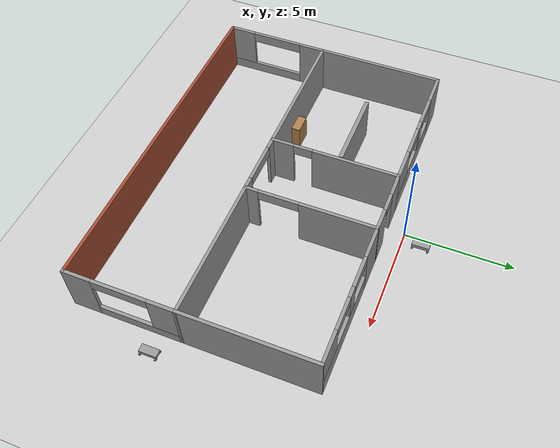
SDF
<sdf version="1.6">
 <world name="default">
  <plugin name="script" filename="libscript.so"/>
  <light name="sun" type="directional">
   <pose>0 0 10 0 -0 0</pose>
   <diffuse>0.8 0.8 0.8 1</diffuse>
   <specular>0.2 0.2 0.2 1</specular>
   <attenuation>
    <range>1000</range>
    <constant>0.9</constant>
    <linear>0.01</linear>
    <quadratic>0.001</quadratic>
   </attenuation>
   <direction>-0.5 0.1 -0.9</direction>
  </light>
  <model name="ground_plane">
   <static>1</static>
   <link name="link">
    <collision name="collision">
     <geometry><plane><normal>0 0 1</normal><size>100 100</size></plane></geometry>
     <surface>
      <contact><collide_bitmask>65535</collide_bitmask></contact>
      <friction><ode><mu>100</mu><mu2>50</mu2></ode></friction>
     </surface>
    </collision>
    <visual name="visual">
     <cast_shadows>0</cast_shadows>
     <geometry><plane><normal>0 0 1</normal><size>100 100</size></plane></geometry>
     <material>
      <script><uri>file://media/materials/scripts/gazebo.material</uri><name>Gazebo/Grey</name></script>
     </material>
    </visual>
   </link>
  </model>
  <gravity>0 0 -9.8</gravity>
  <magnetic_field>6e-06 2.3e-05 -4.2e-05</magnetic_field>
  <atmosphere type="adiabatic"/>
  <physics name="default_physics" default="0" type="ode">
   <max_step_size>0.001</max_step_size>
   <real_time_factor>1</real_time_factor>
   <real_time_update_rate>1000</real_time_update_rate>
  </physics>
  <scene><ambient>0.4 0.4 0.4 1</ambient><background>0.7 0.7 0.7 1</background><shadows>1</shadows></scene>
  <spherical_coordinates>
   <surface_model>EARTH_WGS84</surface_model>
   <latitude_deg>0</latitude_deg>
   <longitude_deg>0</longitude_deg>
   <elevation>0</elevation>
   <heading_deg>0</heading_deg>
  </spherical_coordinates>
  <model name="Tank">
   <link name="link_0">
    <pose>0.126817 -0.036012 0.417499 -1.57079 0 1.5708</pose>
    <inertial>
     <mass>1</mass>
     <inertia><ixx>0.145833</ixx><ixy>0</ixy><ixz>0</ixz><iyy>0.145833</iyy><iyz>0</iyz><izz>0.125</izz></inertia>
    </inertial>
    <visual name="visual">
     <geometry><cylinder><radius>0.05</radius><length>0.1</length></cylinder></geometry>
     <material>
      <lighting>1</lighting>
      <script><uri>file://media/materials/scripts/gazebo.material</uri><name>Gazebo/Grey</name></script>
      <shader type="pixel"><normal_map>__default__</normal_map></shader>
      <ambient>0.3 0.3 0.3 1</ambient>
      <diffuse>0.7 0.7 0.7 1</diffuse>
      <specular>0.01 0.01 0.01 1</specular>
      <emissive>0 0 0 1</emissive>
     </material>
    </visual>
    <collision name="collision">
     <geometry><cylinder><radius>0.05</radius><length>0.1</length></cylinder></geometry>
     <surface>
      <friction>
       <ode><mu>1</mu><mu2>1</mu2><fdir1>0 0 0</fdir1><slip1>0</slip1><slip2>0</slip2></ode>
       <torsional>
        <coefficient>1</coefficient>
        <patch_radius>0</patch_radius>
        <surface_radius>0</surface_radius>
        <use_patch_radius>1</use_patch_radius>
        <ode><slip>0</slip></ode>
       </torsional>
      </friction>
      <bounce><restitution_coefficient>0</restitution_coefficient><threshold>1e+06</threshold></bounce>
      <contact>
       <collide_without_contact>0</collide_without_contact>
       <collide_without_contact_bitmask>1</collide_without_contact_bitmask>
       <collide_bitmask>1</collide_bitmask>
       <ode>
        <soft_cfm>0</soft_cfm>
        <soft_erp>0.2</soft_erp>
        <kp>1e+13</kp>
        <kd>1</kd>
        <max_vel>0.01</max_vel>
        <min_depth>0</min_depth>
       </ode>
       <bullet>
        <split_impulse>1</split_impulse>
        <split_impulse_penetration_threshold>-0.01</split_impulse_penetration_threshold>
        <soft_cfm>0</soft_cfm>
        <soft_erp>0.2</soft_erp>
        <kp>1e+13</kp>
        <kd>1</kd>
       </bullet>
      </contact>
     </surface>
    </collision>
   </link>
   <link name="link_0_clone">
    <pose>0.126817 0.663987 0.4175 -1.57079 0 1.5708</pose>
    <inertial>
     <mass>1</mass>
     <inertia><ixx>0.145833</ixx><ixy>0</ixy><ixz>0</ixz><iyy>0.145833</iyy><iyz>0</iyz><izz>0.125</izz></inertia>
    </inertial>
    <visual name="visual">
     <geometry><cylinder><radius>0.05</radius><length>0.1</length></cylinder></geometry>
     <material>
      <lighting>1</lighting>
      <script><uri>file://media/materials/scripts/gazebo.material</uri><name>Gazebo/Grey</name></script>
      <shader type="pixel"><normal_map>__default__</normal_map></shader>
      <ambient>0.3 0.3 0.3 1</ambient>
      <diffuse>0.7 0.7 0.7 1</diffuse>
      <specular>0.01 0.01 0.01 1</specular>
      <emissive>0 0 0 1</emissive>
     </material>
    </visual>
    <collision name="collision">
     <geometry><cylinder><radius>0.05</radius><length>0.1</length></cylinder></geometry>
     <surface>
      <friction>
       <ode><mu>1</mu><mu2>1</mu2><fdir1>0 0 0</fdir1><slip1>0</slip1><slip2>0</slip2></ode>
       <torsional>
        <coefficient>1</coefficient>
        <patch_radius>0</patch_radius>
        <surface_radius>0</surface_radius>
        <use_patch_radius>1</use_patch_radius>
        <ode><slip>0</slip></ode>
       </torsional>
      </friction>
      <bounce><restitution_coefficient>0</restitution_coefficient><threshold>1e+06</threshold></bounce>
      <contact>
       <collide_without_contact>0</collide_without_contact>
       <collide_without_contact_bitmask>1</collide_without_contact_bitmask>
       <collide_bitmask>1</collide_bitmask>
       <ode>
        <soft_cfm>0</soft_cfm>
        <soft_erp>0.2</soft_erp>
        <kp>1e+13</kp>
        <kd>1</kd>
        <max_vel>0.01</max_vel>
        <min_depth>0</min_depth>
       </ode>
       <bullet>
        <split_impulse>1</split_impulse>
        <split_impulse_penetration_threshold>-0.01</split_impulse_penetration_threshold>
        <soft_cfm>0</soft_cfm>
        <soft_erp>0.2</soft_erp>
        <kp>1e+13</kp>
        <kd>1</kd>
       </bullet>
      </contact>
     </surface>
    </collision>
   </link>
   <link name="link_0_clone_0">
    <pose>0.476817 -0.036013 0.4175 -1.57079 0 1.5708</pose>
    <inertial>
     <mass>1</mass>
     <inertia><ixx>0.145833</ixx><ixy>0</ixy><ixz>0</ixz><iyy>0.145833</iyy><iyz>0</iyz><izz>0.125</izz></inertia>
    </inertial>
    <visual name="visual">
     <geometry><cylinder><radius>0.05</radius><length>0.1</length></cylinder></geometry>
     <material>
      <lighting>1</lighting>
      <script><uri>file://media/materials/scripts/gazebo.material</uri><name>Gazebo/Grey</name></script>
      <shader type="pixel"><normal_map>__default__</normal_map></shader>
      <ambient>0.3 0.3 0.3 1</ambient>
      <diffuse>0.7 0.7 0.7 1</diffuse>
      <specular>0.01 0.01 0.01 1</specular>
      <emissive>0 0 0 1</emissive>
     </material>
    </visual>
    <collision name="collision">
     <geometry><cylinder><radius>0.05</radius><length>0.1</length></cylinder></geometry>
     <surface>
      <friction>
       <ode><mu>1</mu><mu2>1</mu2><fdir1>0 0 0</fdir1><slip1>0</slip1><slip2>0</slip2></ode>
       <torsional>
        <coefficient>1</coefficient>
        <patch_radius>0</patch_radius>
        <surface_radius>0</surface_radius>
        <use_patch_radius>1</use_patch_radius>
        <ode><slip>0</slip></ode>
       </torsional>
      </friction>
      <bounce><restitution_coefficient>0</restitution_coefficient><threshold>1e+06</threshold></bounce>
      <contact>
       <collide_without_contact>0</collide_without_contact>
       <collide_without_contact_bitmask>1</collide_without_contact_bitmask>
       <collide_bitmask>1</collide_bitmask>
       <ode>
        <soft_cfm>0</soft_cfm>
        <soft_erp>0.2</soft_erp>
        <kp>1e+13</kp>
        <kd>1</kd>
        <max_vel>0.01</max_vel>
        <min_depth>0</min_depth>
       </ode>
       <bullet>
        <split_impulse>1</split_impulse>
        <split_impulse_penetration_threshold>-0.01</split_impulse_penetration_threshold>
        <soft_cfm>0</soft_cfm>
        <soft_erp>0.2</soft_erp>
        <kp>1e+13</kp>
        <kd>1</kd>
       </bullet>
      </contact>
     </surface>
    </collision>
   </link>
   <link name="link_0_clone_1">
    <pose>0.476817 0.663987 0.4175 -1.57079 0 1.5708</pose>
    <inertial>
     <mass>1</mass>
     <inertia><ixx>0.145833</ixx><ixy>0</ixy><ixz>0</ixz><iyy>0.145833</iyy><iyz>0</iyz><izz>0.125</izz></inertia>
    </inertial>
    <visual name="visual">
     <geometry><cylinder><radius>0.05</radius><length>0.1</length></cylinder></geometry>
     <material>
      <lighting>1</lighting>
      <script><uri>file://media/materials/scripts/gazebo.material</uri><name>Gazebo/Grey</name></script>
      <shader type="pixel"><normal_map>__default__</normal_map></shader>
      <ambient>0.3 0.3 0.3 1</ambient>
      <diffuse>0.7 0.7 0.7 1</diffuse>
      <specular>0.01 0.01 0.01 1</specular>
      <emissive>0 0 0 1</emissive>
     </material>
    </visual>
    <collision name="collision">
     <geometry><cylinder><radius>0.05</radius><length>0.1</length></cylinder></geometry>
     <surface>
      <friction>
       <ode><mu>1</mu><mu2>1</mu2><fdir1>0 0 0</fdir1><slip1>0</slip1><slip2>0</slip2></ode>
       <torsional>
        <coefficient>1</coefficient>
        <patch_radius>0</patch_radius>
        <surface_radius>0</surface_radius>
        <use_patch_radius>1</use_patch_radius>
        <ode><slip>0</slip></ode>
       </torsional>
      </friction>
      <bounce><restitution_coefficient>0</restitution_coefficient><threshold>1e+06</threshold></bounce>
      <contact>
       <collide_without_contact>0</collide_without_contact>
       <collide_without_contact_bitmask>1</collide_without_contact_bitmask>
       <collide_bitmask>1</collide_bitmask>
       <ode>
        <soft_cfm>0</soft_cfm>
        <soft_erp>0.2</soft_erp>
        <kp>1e+13</kp>
        <kd>1</kd>
        <max_vel>0.01</max_vel>
        <min_depth>0</min_depth>
       </ode>
       <bullet>
        <split_impulse>1</split_impulse>
        <split_impulse_penetration_threshold>-0.01</split_impulse_penetration_threshold>
        <soft_cfm>0</soft_cfm>
        <soft_erp>0.2</soft_erp>
        <kp>1e+13</kp>
        <kd>1</kd>
       </bullet>
      </contact>
     </surface>
    </collision>
   </link>
   <link name="link_1">
    <pose>0.301817 0.313987 0.555 0 -0 0</pose>
    <inertial>
     <mass>1</mass>
     <inertia>
      <ixx>0.166667</ixx>
      <ixy>0</ixy>
      <ixz>0</ixz>
      <iyy>0.166667</iyy>
      <iyz>0</iyz>
      <izz>0.166667</izz>
     </inertia>
    </inertial>
    <visual name="visual">
     <geometry><box><size>0.35 0.8 0.175</size></box></geometry>
     <material>
      <lighting>1</lighting>
      <script><uri>file://media/materials/scripts/gazebo.material</uri><name>Gazebo/Grey</name></script>
      <shader type="pixel"><normal_map>__default__</normal_map></shader>
      <ambient>0.3 0.3 0.3 1</ambient>
      <diffuse>0.7 0.7 0.7 1</diffuse>
      <specular>0.01 0.01 0.01 1</specular>
      <emissive>0 0 0 1</emissive>
     </material>
    </visual>
    <collision name="collision">
     <geometry><box><size>0.35 0.8 0.175</size></box></geometry>
     <surface>
      <friction>
       <ode><mu>1</mu><mu2>1</mu2><fdir1>0 0 0</fdir1><slip1>0</slip1><slip2>0</slip2></ode>
       <torsional>
        <coefficient>1</coefficient>
        <patch_radius>0</patch_radius>
        <surface_radius>0</surface_radius>
        <use_patch_radius>1</use_patch_radius>
        <ode><slip>0</slip></ode>
       </torsional>
      </friction>
      <bounce><restitution_coefficient>0</restitution_coefficient><threshold>1e+06</threshold></bounce>
      <contact>
       <collide_without_contact>0</collide_without_contact>
       <collide_without_contact_bitmask>1</collide_without_contact_bitmask>
       <collide_bitmask>1</collide_bitmask>
       <ode>
        <soft_cfm>0</soft_cfm>
        <soft_erp>0.2</soft_erp>
        <kp>1e+13</kp>
        <kd>1</kd>
        <max_vel>0.01</max_vel>
        <min_depth>0</min_depth>
       </ode>
       <bullet>
        <split_impulse>1</split_impulse>
        <split_impulse_penetration_threshold>-0.01</split_impulse_penetration_threshold>
        <soft_cfm>0</soft_cfm>
        <soft_erp>0.2</soft_erp>
        <kp>1e+13</kp>
        <kd>1</kd>
       </bullet>
      </contact>
     </surface>
    </collision>
   </link>
   <joint name="link_1_JOINT_0" type="revolute">
    <parent>link_1</parent>
    <child>link_0</child>
    <axis>
     <xyz>1 0 0</xyz>
     <use_parent_model_frame>0</use_parent_model_frame>
     <limit>
      <lower>-1.79769e+308</lower>
      <upper>1.79769e+308</upper>
      <effort>-1</effort>
      <velocity>-1</velocity>
     </limit>
     <dynamics>
      <spring_reference>0</spring_reference>
      <spring_stiffness>0</spring_stiffness>
      <damping>0</damping>
     </dynamics>
    </axis>
    <physics>
     <ode><limit><cfm>0</cfm><erp>0.2</erp></limit><suspension><cfm>0</cfm><erp>0.2</erp></suspension></ode>
    </physics>
   </joint>
   <joint name="link_1_JOINT_1" type="revolute">
    <parent>link_1</parent>
    <child>link_0_clone_0</child>
    <axis>
     <xyz>1 0 0</xyz>
     <use_parent_model_frame>0</use_parent_model_frame>
     <limit>
      <lower>-1.79769e+308</lower>
      <upper>1.79769e+308</upper>
      <effort>-1</effort>
      <velocity>-1</velocity>
     </limit>
     <dynamics>
      <spring_reference>0</spring_reference>
      <spring_stiffness>0</spring_stiffness>
      <damping>0</damping>
     </dynamics>
    </axis>
    <physics>
     <ode><limit><cfm>0</cfm><erp>0.2</erp></limit><suspension><cfm>0</cfm><erp>0.2</erp></suspension></ode>
    </physics>
   </joint>
   <joint name="link_1_JOINT_2" type="revolute">
    <parent>link_1</parent>
    <child>link_0_clone</child>
    <axis>
     <xyz>1 0 0</xyz>
     <use_parent_model_frame>0</use_parent_model_frame>
     <limit>
      <lower>-1.79769e+308</lower>
      <upper>1.79769e+308</upper>
      <effort>-1</effort>
      <velocity>-1</velocity>
     </limit>
     <dynamics>
      <spring_reference>0</spring_reference>
      <spring_stiffness>0</spring_stiffness>
      <damping>0</damping>
     </dynamics>
    </axis>
    <physics>
     <ode><limit><cfm>0</cfm><erp>0.2</erp></limit><suspension><cfm>0</cfm><erp>0.2</erp></suspension></ode>
    </physics>
   </joint>
   <joint name="link_1_JOINT_3" type="revolute">
    <parent>link_1</parent>
    <child>link_0_clone_1</child>
    <axis>
     <xyz>1 0 0</xyz>
     <use_parent_model_frame>0</use_parent_model_frame>
     <limit>
      <lower>-1.79769e+308</lower>
      <upper>1.79769e+308</upper>
      <effort>-1</effort>
      <velocity>-1</velocity>
     </limit>
     <dynamics>
      <spring_reference>0</spring_reference>
      <spring_stiffness>0</spring_stiffness>
      <damping>0</damping>
     </dynamics>
    </axis>
    <physics>
     <ode><limit><cfm>0</cfm><erp>0.2</erp></limit><suspension><cfm>0</cfm><erp>0.2</erp></suspension></ode>
    </physics>
   </joint>
   <static>0</static>
   <pose>0.092215 0.542653 -0.367503 4e-06 -9e-06 0.009525</pose>
  </model>
  <model name="Building">
   <pose>0.34481 -6.36801 0 0 -0 0</pose>
   <link name="Wall_11">
    <pose>4.73315 5.49998 0 0 -0 0</pose>
    <visual name="Wall_11_Visual_0">
     <pose>-2.52909 0 1.25 0 -0 0</pose>
     <geometry><box><size>1.59183 0.15 2.5</size></box></geometry>
     <material>
      <script><uri>file://media/materials/scripts/gazebo.material</uri><name>Gazebo/Grey</name></script>
      <ambient>1 1 1 1</ambient>
     </material>
     <meta><layer>0</layer></meta>
    </visual>
    <collision name="Wall_11_Collision_0">
     <geometry><box><size>1.59183 0.15 2.5</size></box></geometry>
     <pose>-2.52909 0 1.25 0 -0 0</pose>
    </collision>
    <visual name="Wall_11_Visual_1">
     <pose>0.795914 0 0.5 0 -0 0</pose>
     <geometry><box><size>5.05817 0.15 1</size></box></geometry>
     <material>
      <script><uri>file://media/materials/scripts/gazebo.material</uri><name>Gazebo/Grey</name></script>
      <ambient>1 1 1 1</ambient>
     </material>
     <meta><layer>0</layer></meta>
    </visual>
    <collision name="Wall_11_Collision_1">
     <geometry><box><size>5.05817 0.15 1</size></box></geometry>
     <pose>0.795914 0 0.5 0 -0 0</pose>
    </collision>
    <visual name="Wall_11_Visual_2">
     <pose>0.018142 0 1.75 0 -0 0</pose>
     <geometry><box><size>0.502627 0.15 1.5</size></box></geometry>
     <material>
      <script><uri>file://media/materials/scripts/gazebo.material</uri><name>Gazebo/Grey</name></script>
      <ambient>1 1 1 1</ambient>
     </material>
     <meta><layer>0</layer></meta>
    </visual>
    <collision name="Wall_11_Collision_2">
     <geometry><box><size>0.502627 0.15 1.5</size></box></geometry>
     <pose>0.018142 0 1.75 0 -0 0</pose>
    </collision>
    <visual name="Wall_11_Visual_3">
     <pose>2.54723 0 1.75 0 -0 0</pose>
     <geometry><box><size>1.55554 0.15 1.5</size></box></geometry>
     <material>
      <script><uri>file://media/materials/scripts/gazebo.material</uri><name>Gazebo/Grey</name></script>
      <ambient>1 1 1 1</ambient>
     </material>
     <meta><layer>0</layer></meta>
    </visual>
    <collision name="Wall_11_Collision_3">
     <geometry><box><size>1.55554 0.15 1.5</size></box></geometry>
     <pose>2.54723 0 1.75 0 -0 0</pose>
    </collision>
    <visual name="Wall_11_Visual_4">
     <pose>-0.983172 0 2.25 0 -0 0</pose>
     <geometry><box><size>1.5 0.15 0.5</size></box></geometry>
     <material>
      <script><uri>file://media/materials/scripts/gazebo.material</uri><name>Gazebo/Grey</name></script>
      <ambient>1 1 1 1</ambient>
     </material>
     <meta><layer>0</layer></meta>
    </visual>
    <collision name="Wall_11_Collision_4">
     <geometry><box><size>1.5 0.15 0.5</size></box></geometry>
     <pose>-0.983172 0 2.25 0 -0 0</pose>
    </collision>
    <visual name="Wall_11_Visual_5">
     <pose>1.01946 0 2.25 0 -0 0</pose>
     <geometry><box><size>1.5 0.15 0.5</size></box></geometry>
     <material>
      <script><uri>file://media/materials/scripts/gazebo.material</uri><name>Gazebo/Grey</name></script>
      <ambient>1 1 1 1</ambient>
     </material>
     <meta><layer>0</layer></meta>
    </visual>
    <collision name="Wall_11_Collision_5">
     <geometry><box><size>1.5 0.15 0.5</size></box></geometry>
     <pose>1.01946 0 2.25 0 -0 0</pose>
    </collision>
   </link>
   <link name="Wall_12">
    <collision name="Wall_12_Collision">
     <geometry><box><size>6.15 0.15 2.5</size></box></geometry>
     <pose>0 0 1.25 0 -0 0</pose>
    </collision>
    <visual name="Wall_12_Visual">
     <pose>0 0 1.25 0 -0 0</pose>
     <geometry><box><size>6.15 0.15 2.5</size></box></geometry>
     <material>
      <script><uri>file://media/materials/scripts/gazebo.material</uri><name>Gazebo/Grey</name></script>
      <ambient>1 1 1 1</ambient>
     </material>
     <meta><layer>0</layer></meta>
    </visual>
    <pose>7.99829 2.49998 0 0 0 -1.57023</pose>
   </link>
   <link name="Wall_13">
    <collision name="Wall_13_Collision">
     <geometry><box><size>6.65 0.15 2.5</size></box></geometry>
     <pose>0 0 1.25 0 -0 0</pose>
    </collision>
    <visual name="Wall_13_Visual">
     <pose>0 0 1.25 0 -0 0</pose>
     <geometry><box><size>6.65 0.15 2.5</size></box></geometry>
     <material>
      <script><uri>file://media/materials/scripts/gazebo.material</uri><name>Gazebo/Grey</name></script>
      <ambient>1 1 1 1</ambient>
     </material>
     <meta><layer>0</layer></meta>
    </visual>
    <pose>4.74998 -0.500021 0 0 -0 3.14159</pose>
   </link>
   <link name="Wall_15">
    <pose>-8.00002 -3.00002 0 0 0 -1.5708</pose>
    <visual name="Wall_15_Visual_0">
     <pose>-1.9125 0 1.25 0 -0 0</pose>
     <geometry><box><size>1.325 0.15 2.5</size></box></geometry>
     <material>
      <script><uri>file://media/materials/scripts/gazebo.material</uri><name>Gazebo/Grey</name></script>
      <ambient>1 1 1 1</ambient>
     </material>
     <meta><layer>0</layer></meta>
    </visual>
    <collision name="Wall_15_Collision_0">
     <geometry><box><size>1.325 0.15 2.5</size></box></geometry>
     <pose>-1.9125 0 1.25 0 -0 0</pose>
    </collision>
    <visual name="Wall_15_Visual_1">
     <pose>0.6625 0 0.25 0 -0 0</pose>
     <geometry><box><size>3.825 0.15 0.5</size></box></geometry>
     <material>
      <script><uri>file://media/materials/scripts/gazebo.material</uri><name>Gazebo/Grey</name></script>
      <ambient>1 1 1 1</ambient>
     </material>
     <meta><layer>0</layer></meta>
    </visual>
    <collision name="Wall_15_Collision_1">
     <geometry><box><size>3.825 0.15 0.5</size></box></geometry>
     <pose>0.6625 0 0.25 0 -0 0</pose>
    </collision>
    <visual name="Wall_15_Visual_2">
     <pose>1.9125 0 1.5 0 -0 0</pose>
     <geometry><box><size>1.325 0.15 2</size></box></geometry>
     <material>
      <script><uri>file://media/materials/scripts/gazebo.material</uri><name>Gazebo/Grey</name></script>
      <ambient>1 1 1 1</ambient>
     </material>
     <meta><layer>0</layer></meta>
    </visual>
    <collision name="Wall_15_Collision_2">
     <geometry><box><size>1.325 0.15 2</size></box></geometry>
     <pose>1.9125 0 1.5 0 -0 0</pose>
    </collision>
    <visual name="Wall_15_Visual_3">
     <pose>0 0 2.25 0 -0 0</pose>
     <geometry><box><size>2.5 0.15 0.5</size></box></geometry>
     <material>
      <script><uri>file://media/materials/scripts/gazebo.material</uri><name>Gazebo/Grey</name></script>
      <ambient>1 1 1 1</ambient>
     </material>
     <meta><layer>0</layer></meta>
    </visual>
    <collision name="Wall_15_Collision_3">
     <geometry><box><size>2.5 0.15 0.5</size></box></geometry>
     <pose>0 0 2.25 0 -0 0</pose>
    </collision>
   </link>
   <link name="Wall_16">
    <collision name="Wall_16_Collision">
     <geometry><box><size>16.15 0.15 2.5</size></box></geometry>
     <pose>0 0 1.25 0 -0 0</pose>
    </collision>
    <visual name="Wall_16_Visual">
     <pose>0 0 1.25 0 -0 0</pose>
     <geometry><box><size>16.15 0.15 2.5</size></box></geometry>
     <material>
      <script><uri>file://media/materials/scripts/gazebo.material</uri><name>Gazebo/Bricks</name></script>
      <ambient>1 1 1 1</ambient>
     </material>
     <meta><layer>0</layer></meta>
    </visual>
    <pose>-2.1e-05 -5.50002 0 0 -0 0</pose>
   </link>
   <link name="Wall_17">
    <pose>7.99998 -3.00002 0 0 -0 1.5708</pose>
    <visual name="Wall_17_Visual_0">
     <pose>-1.9125 0 1.25 0 -0 0</pose>
     <geometry><box><size>1.325 0.15 2.5</size></box></geometry>
     <material>
      <script><uri>file://media/materials/scripts/gazebo.material</uri><name>Gazebo/Grey</name></script>
      <ambient>1 1 1 1</ambient>
     </material>
     <meta><layer>0</layer></meta>
    </visual>
    <collision name="Wall_17_Collision_0">
     <geometry><box><size>1.325 0.15 2.5</size></box></geometry>
     <pose>-1.9125 0 1.25 0 -0 0</pose>
    </collision>
    <visual name="Wall_17_Visual_1">
     <pose>0.6625 0 0.25 0 -0 0</pose>
     <geometry><box><size>3.825 0.15 0.5</size></box></geometry>
     <material>
      <script><uri>file://media/materials/scripts/gazebo.material</uri><name>Gazebo/Grey</name></script>
      <ambient>1 1 1 1</ambient>
     </material>
     <meta><layer>0</layer></meta>
    </visual>
    <collision name="Wall_17_Collision_1">
     <geometry><box><size>3.825 0.15 0.5</size></box></geometry>
     <pose>0.6625 0 0.25 0 -0 0</pose>
    </collision>
    <visual name="Wall_17_Visual_2">
     <pose>1.9125 0 1.5 0 -0 0</pose>
     <geometry><box><size>1.325 0.15 2</size></box></geometry>
     <material>
      <script><uri>file://media/materials/scripts/gazebo.material</uri><name>Gazebo/Grey</name></script>
      <ambient>1 1 1 1</ambient>
     </material>
     <meta><layer>0</layer></meta>
    </visual>
    <collision name="Wall_17_Collision_2">
     <geometry><box><size>1.325 0.15 2</size></box></geometry>
     <pose>1.9125 0 1.5 0 -0 0</pose>
    </collision>
    <visual name="Wall_17_Visual_3">
     <pose>0 0 2.25 0 -0 0</pose>
     <geometry><box><size>2.5 0.15 0.5</size></box></geometry>
     <material>
      <script><uri>file://media/materials/scripts/gazebo.material</uri><name>Gazebo/Grey</name></script>
      <ambient>1 1 1 1</ambient>
     </material>
     <meta><layer>0</layer></meta>
    </visual>
    <collision name="Wall_17_Collision_3">
     <geometry><box><size>2.5 0.15 0.5</size></box></geometry>
     <pose>0 0 2.25 0 -0 0</pose>
    </collision>
   </link>
   <link name="Wall_2">
    <pose>-4.75002 5.49998 0 0 -0 0</pose>
    <visual name="Wall_2_Visual_0">
     <pose>-2.5375 0 1.25 0 -0 0</pose>
     <geometry><box><size>1.575 0.15 2.5</size></box></geometry>
     <material>
      <script><uri>file://media/materials/scripts/gazebo.material</uri><name>Gazebo/Grey</name></script>
      <ambient>1 1 1 1</ambient>
     </material>
     <meta><layer>0</layer></meta>
    </visual>
    <collision name="Wall_2_Collision_0">
     <geometry><box><size>1.575 0.15 2.5</size></box></geometry>
     <pose>-2.5375 0 1.25 0 -0 0</pose>
    </collision>
    <visual name="Wall_2_Visual_1">
     <pose>0.7875 0 0.5 0 -0 0</pose>
     <geometry><box><size>5.075 0.15 1</size></box></geometry>
     <material>
      <script><uri>file://media/materials/scripts/gazebo.material</uri><name>Gazebo/Grey</name></script>
      <ambient>1 1 1 1</ambient>
     </material>
     <meta><layer>0</layer></meta>
    </visual>
    <collision name="Wall_2_Collision_1">
     <geometry><box><size>5.075 0.15 1</size></box></geometry>
     <pose>0.7875 0 0.5 0 -0 0</pose>
    </collision>
    <visual name="Wall_2_Visual_2">
     <pose>0 0 1.75 0 -0 0</pose>
     <geometry><box><size>0.5 0.15 1.5</size></box></geometry>
     <material>
      <script><uri>file://media/materials/scripts/gazebo.material</uri><name>Gazebo/Grey</name></script>
      <ambient>1 1 1 1</ambient>
     </material>
     <meta><layer>0</layer></meta>
    </visual>
    <collision name="Wall_2_Collision_2">
     <geometry><box><size>0.5 0.15 1.5</size></box></geometry>
     <pose>0 0 1.75 0 -0 0</pose>
    </collision>
    <visual name="Wall_2_Visual_3">
     <pose>2.5375 0 1.75 0 -0 0</pose>
     <geometry><box><size>1.575 0.15 1.5</size></box></geometry>
     <material>
      <script><uri>file://media/materials/scripts/gazebo.material</uri><name>Gazebo/Grey</name></script>
      <ambient>1 1 1 1</ambient>
     </material>
     <meta><layer>0</layer></meta>
    </visual>
    <collision name="Wall_2_Collision_3">
     <geometry><box><size>1.575 0.15 1.5</size></box></geometry>
     <pose>2.5375 0 1.75 0 -0 0</pose>
    </collision>
    <visual name="Wall_2_Visual_4">
     <pose>-1 0 2.25 0 -0 0</pose>
     <geometry><box><size>1.5 0.15 0.5</size></box></geometry>
     <material>
      <script><uri>file://media/materials/scripts/gazebo.material</uri><name>Gazebo/Grey</name></script>
      <ambient>1 1 1 1</ambient>
     </material>
     <meta><layer>0</layer></meta>
    </visual>
    <collision name="Wall_2_Collision_4">
     <geometry><box><size>1.5 0.15 0.5</size></box></geometry>
     <pose>-1 0 2.25 0 -0 0</pose>
    </collision>
    <visual name="Wall_2_Visual_5">
     <pose>1 0 2.25 0 -0 0</pose>
     <geometry><box><size>1.5 0.15 0.5</size></box></geometry>
     <material>
      <script><uri>file://media/materials/scripts/gazebo.material</uri><name>Gazebo/Grey</name></script>
      <ambient>1 1 1 1</ambient>
     </material>
     <meta><layer>0</layer></meta>
    </visual>
    <collision name="Wall_2_Collision_5">
     <geometry><box><size>1.5 0.15 0.5</size></box></geometry>
     <pose>1 0 2.25 0 -0 0</pose>
    </collision>
   </link>
   <link name="Wall_3">
    <pose>-1.50002 2.49998 0 0 0 -1.5708</pose>
    <visual name="Wall_3_Visual_0">
     <pose>-1.0125 0 1.25 0 -0 0</pose>
     <geometry><box><size>4.125 0.15 2.5</size></box></geometry>
     <material>
      <script><uri>file://media/materials/scripts/gazebo.material</uri><name>Gazebo/Grey</name></script>
      <ambient>1 1 1 1</ambient>
     </material>
     <meta><layer>0</layer></meta>
    </visual>
    <collision name="Wall_3_Collision_0">
     <geometry><box><size>4.125 0.15 2.5</size></box></geometry>
     <pose>-1.0125 0 1.25 0 -0 0</pose>
    </collision>
    <visual name="Wall_3_Visual_1">
     <pose>2.5125 0 1.25 0 -0 0</pose>
     <geometry><box><size>1.125 0.15 2.5</size></box></geometry>
     <material>
      <script><uri>file://media/materials/scripts/gazebo.material</uri><name>Gazebo/Grey</name></script>
      <ambient>1 1 1 1</ambient>
     </material>
     <meta><layer>0</layer></meta>
    </visual>
    <collision name="Wall_3_Collision_1">
     <geometry><box><size>1.125 0.15 2.5</size></box></geometry>
     <pose>2.5125 0 1.25 0 -0 0</pose>
    </collision>
    <visual name="Wall_3_Visual_2">
     <pose>1.5 0 2.25 0 -0 0</pose>
     <geometry><box><size>0.9 0.15 0.5</size></box></geometry>
     <material>
      <script><uri>file://media/materials/scripts/gazebo.material</uri><name>Gazebo/Grey</name></script>
      <ambient>1 1 1 1</ambient>
     </material>
     <meta><layer>0</layer></meta>
    </visual>
    <collision name="Wall_3_Collision_2">
     <geometry><box><size>0.9 0.15 0.5</size></box></geometry>
     <pose>1.5 0 2.25 0 -0 0</pose>
    </collision>
   </link>
   <link name="Wall_4">
    <collision name="Wall_4_Collision">
     <geometry><box><size>6.65 0.15 2.5</size></box></geometry>
     <pose>0 0 1.25 0 -0 0</pose>
    </collision>
    <visual name="Wall_4_Visual">
     <pose>0 0 1.25 0 -0 0</pose>
     <geometry><box><size>6.65 0.15 2.5</size></box></geometry>
     <material>
      <script><uri>file://media/materials/scripts/gazebo.material</uri><name>Gazebo/Grey</name></script>
      <ambient>1 1 1 1</ambient>
     </material>
     <meta><layer>0</layer></meta>
    </visual>
    <pose>-4.75002 -0.500021 0 0 -0 3.14159</pose>
   </link>
   <link name="Wall_5">
    <collision name="Wall_5_Collision">
     <geometry><box><size>6.15 0.15 2.5</size></box></geometry>
     <pose>0 0 1.25 0 -0 0</pose>
    </collision>
    <visual name="Wall_5_Visual">
     <pose>0 0 1.25 0 -0 0</pose>
     <geometry><box><size>6.15 0.15 2.5</size></box></geometry>
     <material>
      <script><uri>file://media/materials/scripts/gazebo.material</uri><name>Gazebo/Grey</name></script>
      <ambient>1 1 1 1</ambient>
     </material>
     <meta><layer>0</layer></meta>
    </visual>
    <pose>-8.00002 2.49998 0 0 -0 1.5708</pose>
   </link>
   <link name="Wall_7">
    <pose>-0.001709 5.49998 0 0 -0 0</pose>
    <visual name="Wall_7_Visual_0">
     <pose>-0.995044 0 1.25 0 -0 0</pose>
     <geometry><box><size>1.15654 0.15 2.5</size></box></geometry>
     <material>
      <script><uri>file://media/materials/scripts/gazebo.material</uri><name>Gazebo/Grey</name></script>
      <ambient>1 1 1 1</ambient>
     </material>
     <meta><layer>0</layer></meta>
    </visual>
    <collision name="Wall_7_Collision_0">
     <geometry><box><size>1.15654 0.15 2.5</size></box></geometry>
     <pose>-0.995044 0 1.25 0 -0 0</pose>
    </collision>
    <visual name="Wall_7_Visual_1">
     <pose>1.02827 0 1.25 0 -0 0</pose>
     <geometry><box><size>1.09009 0.15 2.5</size></box></geometry>
     <material>
      <script><uri>file://media/materials/scripts/gazebo.material</uri><name>Gazebo/Grey</name></script>
      <ambient>1 1 1 1</ambient>
     </material>
     <meta><layer>0</layer></meta>
    </visual>
    <collision name="Wall_7_Collision_1">
     <geometry><box><size>1.09009 0.15 2.5</size></box></geometry>
     <pose>1.02827 0 1.25 0 -0 0</pose>
    </collision>
    <visual name="Wall_7_Visual_2">
     <pose>0.033224 0 2.25 0 -0 0</pose>
     <geometry><box><size>0.9 0.15 0.5</size></box></geometry>
     <material>
      <script><uri>file://media/materials/scripts/gazebo.material</uri><name>Gazebo/Grey</name></script>
      <ambient>1 1 1 1</ambient>
     </material>
     <meta><layer>0</layer></meta>
    </visual>
    <collision name="Wall_7_Collision_2">
     <geometry><box><size>0.9 0.15 0.5</size></box></geometry>
     <pose>0.033224 0 2.25 0 -0 0</pose>
    </collision>
   </link>
   <link name="Wall_8">
    <pose>1.49829 2.49998 0 0 0 -1.57023</pose>
    <visual name="Wall_8_Visual_0">
     <pose>-1.28537 0 1.25 0 -0 0</pose>
     <geometry><box><size>3.57927 0.15 2.5</size></box></geometry>
     <material>
      <script><uri>file://media/materials/scripts/gazebo.material</uri><name>Gazebo/Grey</name></script>
      <ambient>1 1 1 1</ambient>
     </material>
     <meta><layer>0</layer></meta>
    </visual>
    <collision name="Wall_8_Collision_0">
     <geometry><box><size>3.57927 0.15 2.5</size></box></geometry>
     <pose>-1.28537 0 1.25 0 -0 0</pose>
    </collision>
    <visual name="Wall_8_Visual_1">
     <pose>2.73963 0 1.25 0 -0 0</pose>
     <geometry><box><size>0.67074 0.15 2.5</size></box></geometry>
     <material>
      <script><uri>file://media/materials/scripts/gazebo.material</uri><name>Gazebo/Grey</name></script>
      <ambient>1 1 1 1</ambient>
     </material>
     <meta><layer>0</layer></meta>
    </visual>
    <collision name="Wall_8_Collision_1">
     <geometry><box><size>0.67074 0.15 2.5</size></box></geometry>
     <pose>2.73963 0 1.25 0 -0 0</pose>
    </collision>
    <visual name="Wall_8_Visual_2">
     <pose>1.45426 0 2.25 0 -0 0</pose>
     <geometry><box><size>1.9 0.15 0.5</size></box></geometry>
     <material>
      <script><uri>file://media/materials/scripts/gazebo.material</uri><name>Gazebo/Grey</name></script>
      <ambient>1 1 1 1</ambient>
     </material>
     <meta><layer>0</layer></meta>
    </visual>
    <collision name="Wall_8_Collision_2">
     <geometry><box><size>1.9 0.15 0.5</size></box></geometry>
     <pose>1.45426 0 2.25 0 -0 0</pose>
    </collision>
   </link>
   <link name="Wall_9">
    <pose>-2.1e-05 -0.500021 0 0 -0 3.14159</pose>
    <visual name="Wall_9_Visual_0">
     <pose>-1.2625 0 1.25 0 -0 0</pose>
     <geometry><box><size>0.625 0.15 2.5</size></box></geometry>
     <material>
      <script><uri>file://media/materials/scripts/gazebo.material</uri><name>Gazebo/Grey</name></script>
      <ambient>1 1 1 1</ambient>
     </material>
     <meta><layer>0</layer></meta>
    </visual>
    <collision name="Wall_9_Collision_0">
     <geometry><box><size>0.625 0.15 2.5</size></box></geometry>
     <pose>-1.2625 0 1.25 0 -0 0</pose>
    </collision>
    <visual name="Wall_9_Visual_1">
     <pose>1.2625 0 1.25 0 -0 0</pose>
     <geometry><box><size>0.625 0.15 2.5</size></box></geometry>
     <material>
      <script><uri>file://media/materials/scripts/gazebo.material</uri><name>Gazebo/Grey</name></script>
      <ambient>1 1 1 1</ambient>
     </material>
     <meta><layer>0</layer></meta>
    </visual>
    <collision name="Wall_9_Collision_1">
     <geometry><box><size>0.625 0.15 2.5</size></box></geometry>
     <pose>1.2625 0 1.25 0 -0 0</pose>
    </collision>
    <visual name="Wall_9_Visual_2">
     <pose>0 0 2.25 0 -0 0</pose>
     <geometry><box><size>1.9 0.15 0.5</size></box></geometry>
     <material>
      <script><uri>file://media/materials/scripts/gazebo.material</uri><name>Gazebo/Grey</name></script>
      <ambient>1 1 1 1</ambient>
     </material>
     <meta><layer>0</layer></meta>
    </visual>
    <collision name="Wall_9_Collision_2">
     <geometry><box><size>1.9 0.15 0.5</size></box></geometry>
     <pose>0 0 2.25 0 -0 0</pose>
    </collision>
   </link>
   <static>1</static>
  </model>
  <model name="bookshelf">
   <static>1</static>
   <link name="link">
    <inertial><mass>1</mass></inertial>
    <collision name="back">
     <pose>0 0.005 0.6 0 -0 0</pose>
     <geometry><box><size>0.9 0.01 1.2</size></box></geometry>
    </collision>
    <visual name="visual1">
     <pose>0 0.005 0.6 0 -0 0</pose>
     <geometry><box><size>0.9 0.01 1.2</size></box></geometry>
     <material>
      <script><uri>file://media/materials/scripts/gazebo.material</uri><name>Gazebo/Wood</name></script>
     </material>
    </visual>
    <collision name="left_side">
     <pose>0.45 -0.195 0.6 0 -0 0</pose>
     <geometry><box><size>0.02 0.4 1.2</size></box></geometry>
    </collision>
    <visual name="visual2">
     <pose>0.45 -0.195 0.6 0 -0 0</pose>
     <geometry><box><size>0.02 0.4 1.2</size></box></geometry>
     <material>
      <script><uri>file://media/materials/scripts/gazebo.material</uri><name>Gazebo/Wood</name></script>
     </material>
    </visual>
    <collision name="right_side">
     <pose>-0.45 -0.195 0.6 0 -0 0</pose>
     <geometry><box><size>0.02 0.4 1.2</size></box></geometry>
    </collision>
    <visual name="visual3">
     <pose>-0.45 -0.195 0.6 0 -0 0</pose>
     <geometry><box><size>0.02 0.4 1.2</size></box></geometry>
     <material>
      <script><uri>file://media/materials/scripts/gazebo.material</uri><name>Gazebo/Wood</name></script>
     </material>
    </visual>
    <collision name="bottom">
     <pose>0 -0.195 0.03 0 -0 0</pose>
     <geometry><box><size>0.88 0.4 0.06</size></box></geometry>
    </collision>
    <visual name="visual4">
     <pose>0 -0.195 0.03 0 -0 0</pose>
     <geometry><box><size>0.88 0.4 0.06</size></box></geometry>
     <material>
      <script><uri>file://media/materials/scripts/gazebo.material</uri><name>Gazebo/Wood</name></script>
     </material>
    </visual>
    <collision name="top">
     <pose>0 -0.195 1.19 0 -0 0</pose>
     <geometry><box><size>0.88 0.4 0.02</size></box></geometry>
    </collision>
    <visual name="visual5">
     <pose>0 -0.195 1.19 0 -0 0</pose>
     <geometry><box><size>0.88 0.4 0.02</size></box></geometry>
     <material>
      <script><uri>file://media/materials/scripts/gazebo.material</uri><name>Gazebo/Wood</name></script>
     </material>
    </visual>
    <collision name="low_shelf">
     <pose>0 -0.195 0.43 0 -0 0</pose>
     <geometry><box><size>0.88 0.4 0.02</size></box></geometry>
    </collision>
    <visual name="visual6">
     <pose>0 -0.195 0.43 0 -0 0</pose>
     <geometry><box><size>0.88 0.4 0.02</size></box></geometry>
     <material>
      <script><uri>file://media/materials/scripts/gazebo.material</uri><name>Gazebo/Wood</name></script>
     </material>
    </visual>
    <collision name="high_shelf">
     <pose>0 -0.195 0.8 0 -0 0</pose>
     <geometry><box><size>0.88 0.4 0.02</size></box></geometry>
    </collision>
    <visual name="visual7">
     <pose>0 -0.195 0.8 0 -0 0</pose>
     <geometry><box><size>0.88 0.4 0.02</size></box></geometry>
     <material>
      <script><uri>file://media/materials/scripts/gazebo.material</uri><name>Gazebo/Wood</name></script>
     </material>
    </visual>
   </link>
   <pose>-3.64539 -6.3793 0 0 -0 0</pose>
  </model>
  <model name="Wall">
   <link name="link">
    <pose>0 0 1.4 0 -0 0</pose>
    <inertial>
     <mass>0.394446</mass>
     <inertia>
      <ixx>0.165378</ixx>
      <ixy>0</ixy>
      <ixz>0</ixz>
      <iyy>0.615933</iyy>
      <iyz>0</iyz>
      <izz>0.453184</izz>
     </inertia>
    </inertial>
    <visual name="visual">
     <cast_shadows>0</cast_shadows>
     <geometry><box><size>3.70769 0.2 2.2341</size></box></geometry>
     <material>
      <script>
       <uri>model://grey_wall/materials/scripts</uri>
       <uri>model://grey_wall/materials/textures</uri>
       <name>vrc/grey_wall</name>
      </script>
      <shader type="pixel"><normal_map>__default__</normal_map></shader>
      <ambient>1 1 1 1</ambient>
      <diffuse>1 1 1 1</diffuse>
      <specular>0 0 0 1</specular>
      <emissive>0 0 0 1</emissive>
     </material>
    </visual>
    <collision name="collision">
     <geometry><box><size>3.70769 0.2 2.2341</size></box></geometry>
     <surface>
      <friction>
       <ode><mu>1</mu><mu2>1</mu2><fdir1>0 0 0</fdir1><slip1>0</slip1><slip2>0</slip2></ode>
       <torsional>
        <coefficient>1</coefficient>
        <patch_radius>0</patch_radius>
        <surface_radius>0</surface_radius>
        <use_patch_radius>1</use_patch_radius>
        <ode><slip>0</slip></ode>
       </torsional>
      </friction>
      <bounce><restitution_coefficient>0</restitution_coefficient><threshold>1e+06</threshold></bounce>
      <contact>
       <collide_without_contact>0</collide_without_contact>
       <collide_without_contact_bitmask>1</collide_without_contact_bitmask>
       <collide_bitmask>1</collide_bitmask>
       <ode>
        <soft_cfm>0</soft_cfm>
        <soft_erp>0.2</soft_erp>
        <kp>1e+13</kp>
        <kd>1</kd>
        <max_vel>0.01</max_vel>
        <min_depth>0</min_depth>
       </ode>
       <bullet>
        <split_impulse>1</split_impulse>
        <split_impulse_penetration_threshold>-0.01</split_impulse_penetration_threshold>
        <soft_cfm>0</soft_cfm>
        <soft_erp>0.2</soft_erp>
        <kp>1e+13</kp>
        <kd>1</kd>
       </bullet>
      </contact>
     </surface>
    </collision>
   </link>
   <static>1</static>
   <pose>-3.09148 -3.60519 0 0 -0 0</pose>
  </model>
  <model name="Tank_0">
   <link name="link_0">
    <pose>0.126817 -0.036012 0.417499 -1.57079 0 1.5708</pose>
    <inertial>
     <mass>1</mass>
     <inertia><ixx>0.145833</ixx><ixy>0</ixy><ixz>0</ixz><iyy>0.145833</iyy><iyz>0</iyz><izz>0.125</izz></inertia>
    </inertial>
    <visual name="visual">
     <geometry><cylinder><radius>0.05</radius><length>0.1</length></cylinder></geometry>
     <material>
      <lighting>1</lighting>
      <script><uri>file://media/materials/scripts/gazebo.material</uri><name>Gazebo/Grey</name></script>
      <shader type="pixel"><normal_map>__default__</normal_map></shader>
      <ambient>0.3 0.3 0.3 1</ambient>
      <diffuse>0.7 0.7 0.7 1</diffuse>
      <specular>0.01 0.01 0.01 1</specular>
      <emissive>0 0 0 1</emissive>
     </material>
    </visual>
    <collision name="collision">
     <geometry><cylinder><radius>0.05</radius><length>0.1</length></cylinder></geometry>
     <surface>
      <friction>
       <ode><mu>1</mu><mu2>1</mu2><fdir1>0 0 0</fdir1><slip1>0</slip1><slip2>0</slip2></ode>
       <torsional>
        <coefficient>1</coefficient>
        <patch_radius>0</patch_radius>
        <surface_radius>0</surface_radius>
        <use_patch_radius>1</use_patch_radius>
        <ode><slip>0</slip></ode>
       </torsional>
      </friction>
      <bounce><restitution_coefficient>0</restitution_coefficient><threshold>1e+06</threshold></bounce>
      <contact>
       <collide_without_contact>0</collide_without_contact>
       <collide_without_contact_bitmask>1</collide_without_contact_bitmask>
       <collide_bitmask>1</collide_bitmask>
       <ode>
        <soft_cfm>0</soft_cfm>
        <soft_erp>0.2</soft_erp>
        <kp>1e+13</kp>
        <kd>1</kd>
        <max_vel>0.01</max_vel>
        <min_depth>0</min_depth>
       </ode>
       <bullet>
        <split_impulse>1</split_impulse>
        <split_impulse_penetration_threshold>-0.01</split_impulse_penetration_threshold>
        <soft_cfm>0</soft_cfm>
        <soft_erp>0.2</soft_erp>
        <kp>1e+13</kp>
        <kd>1</kd>
       </bullet>
      </contact>
     </surface>
    </collision>
   </link>
   <link name="link_0_clone">
    <pose>0.126817 0.663987 0.4175 -1.57079 0 1.5708</pose>
    <inertial>
     <mass>1</mass>
     <inertia><ixx>0.145833</ixx><ixy>0</ixy><ixz>0</ixz><iyy>0.145833</iyy><iyz>0</iyz><izz>0.125</izz></inertia>
    </inertial>
    <visual name="visual">
     <geometry><cylinder><radius>0.05</radius><length>0.1</length></cylinder></geometry>
     <material>
      <lighting>1</lighting>
      <script><uri>file://media/materials/scripts/gazebo.material</uri><name>Gazebo/Grey</name></script>
      <shader type="pixel"><normal_map>__default__</normal_map></shader>
      <ambient>0.3 0.3 0.3 1</ambient>
      <diffuse>0.7 0.7 0.7 1</diffuse>
      <specular>0.01 0.01 0.01 1</specular>
      <emissive>0 0 0 1</emissive>
     </material>
    </visual>
    <collision name="collision">
     <geometry><cylinder><radius>0.05</radius><length>0.1</length></cylinder></geometry>
     <surface>
      <friction>
       <ode><mu>1</mu><mu2>1</mu2><fdir1>0 0 0</fdir1><slip1>0</slip1><slip2>0</slip2></ode>
       <torsional>
        <coefficient>1</coefficient>
        <patch_radius>0</patch_radius>
        <surface_radius>0</surface_radius>
        <use_patch_radius>1</use_patch_radius>
        <ode><slip>0</slip></ode>
       </torsional>
      </friction>
      <bounce><restitution_coefficient>0</restitution_coefficient><threshold>1e+06</threshold></bounce>
      <contact>
       <collide_without_contact>0</collide_without_contact>
       <collide_without_contact_bitmask>1</collide_without_contact_bitmask>
       <collide_bitmask>1</collide_bitmask>
       <ode>
        <soft_cfm>0</soft_cfm>
        <soft_erp>0.2</soft_erp>
        <kp>1e+13</kp>
        <kd>1</kd>
        <max_vel>0.01</max_vel>
        <min_depth>0</min_depth>
       </ode>
       <bullet>
        <split_impulse>1</split_impulse>
        <split_impulse_penetration_threshold>-0.01</split_impulse_penetration_threshold>
        <soft_cfm>0</soft_cfm>
        <soft_erp>0.2</soft_erp>
        <kp>1e+13</kp>
        <kd>1</kd>
       </bullet>
      </contact>
     </surface>
    </collision>
   </link>
   <link name="link_0_clone_0">
    <pose>0.476817 -0.036013 0.4175 -1.57079 0 1.5708</pose>
    <inertial>
     <mass>1</mass>
     <inertia><ixx>0.145833</ixx><ixy>0</ixy><ixz>0</ixz><iyy>0.145833</iyy><iyz>0</iyz><izz>0.125</izz></inertia>
    </inertial>
    <visual name="visual">
     <geometry><cylinder><radius>0.05</radius><length>0.1</length></cylinder></geometry>
     <material>
      <lighting>1</lighting>
      <script><uri>file://media/materials/scripts/gazebo.material</uri><name>Gazebo/Grey</name></script>
      <shader type="pixel"><normal_map>__default__</normal_map></shader>
      <ambient>0.3 0.3 0.3 1</ambient>
      <diffuse>0.7 0.7 0.7 1</diffuse>
      <specular>0.01 0.01 0.01 1</specular>
      <emissive>0 0 0 1</emissive>
     </material>
    </visual>
    <collision name="collision">
     <geometry><cylinder><radius>0.05</radius><length>0.1</length></cylinder></geometry>
     <surface>
      <friction>
       <ode><mu>1</mu><mu2>1</mu2><fdir1>0 0 0</fdir1><slip1>0</slip1><slip2>0</slip2></ode>
       <torsional>
        <coefficient>1</coefficient>
        <patch_radius>0</patch_radius>
        <surface_radius>0</surface_radius>
        <use_patch_radius>1</use_patch_radius>
        <ode><slip>0</slip></ode>
       </torsional>
      </friction>
      <bounce><restitution_coefficient>0</restitution_coefficient><threshold>1e+06</threshold></bounce>
      <contact>
       <collide_without_contact>0</collide_without_contact>
       <collide_without_contact_bitmask>1</collide_without_contact_bitmask>
       <collide_bitmask>1</collide_bitmask>
       <ode>
        <soft_cfm>0</soft_cfm>
        <soft_erp>0.2</soft_erp>
        <kp>1e+13</kp>
        <kd>1</kd>
        <max_vel>0.01</max_vel>
        <min_depth>0</min_depth>
       </ode>
       <bullet>
        <split_impulse>1</split_impulse>
        <split_impulse_penetration_threshold>-0.01</split_impulse_penetration_threshold>
        <soft_cfm>0</soft_cfm>
        <soft_erp>0.2</soft_erp>
        <kp>1e+13</kp>
        <kd>1</kd>
       </bullet>
      </contact>
     </surface>
    </collision>
   </link>
   <link name="link_0_clone_1">
    <pose>0.476817 0.663987 0.4175 -1.57079 0 1.5708</pose>
    <inertial>
     <mass>1</mass>
     <inertia><ixx>0.145833</ixx><ixy>0</ixy><ixz>0</ixz><iyy>0.145833</iyy><iyz>0</iyz><izz>0.125</izz></inertia>
    </inertial>
    <visual name="visual">
     <geometry><cylinder><radius>0.05</radius><length>0.1</length></cylinder></geometry>
     <material>
      <lighting>1</lighting>
      <script><uri>file://media/materials/scripts/gazebo.material</uri><name>Gazebo/Grey</name></script>
      <shader type="pixel"><normal_map>__default__</normal_map></shader>
      <ambient>0.3 0.3 0.3 1</ambient>
      <diffuse>0.7 0.7 0.7 1</diffuse>
      <specular>0.01 0.01 0.01 1</specular>
      <emissive>0 0 0 1</emissive>
     </material>
    </visual>
    <collision name="collision">
     <geometry><cylinder><radius>0.05</radius><length>0.1</length></cylinder></geometry>
     <surface>
      <friction>
       <ode><mu>1</mu><mu2>1</mu2><fdir1>0 0 0</fdir1><slip1>0</slip1><slip2>0</slip2></ode>
       <torsional>
        <coefficient>1</coefficient>
        <patch_radius>0</patch_radius>
        <surface_radius>0</surface_radius>
        <use_patch_radius>1</use_patch_radius>
        <ode><slip>0</slip></ode>
       </torsional>
      </friction>
      <bounce><restitution_coefficient>0</restitution_coefficient><threshold>1e+06</threshold></bounce>
      <contact>
       <collide_without_contact>0</collide_without_contact>
       <collide_without_contact_bitmask>1</collide_without_contact_bitmask>
       <collide_bitmask>1</collide_bitmask>
       <ode>
        <soft_cfm>0</soft_cfm>
        <soft_erp>0.2</soft_erp>
        <kp>1e+13</kp>
        <kd>1</kd>
        <max_vel>0.01</max_vel>
        <min_depth>0</min_depth>
       </ode>
       <bullet>
        <split_impulse>1</split_impulse>
        <split_impulse_penetration_threshold>-0.01</split_impulse_penetration_threshold>
        <soft_cfm>0</soft_cfm>
        <soft_erp>0.2</soft_erp>
        <kp>1e+13</kp>
        <kd>1</kd>
       </bullet>
      </contact>
     </surface>
    </collision>
   </link>
   <link name="link_1">
    <pose>0.301817 0.313987 0.555 0 -0 0</pose>
    <inertial>
     <mass>1</mass>
     <inertia>
      <ixx>0.166667</ixx>
      <ixy>0</ixy>
      <ixz>0</ixz>
      <iyy>0.166667</iyy>
      <iyz>0</iyz>
      <izz>0.166667</izz>
     </inertia>
    </inertial>
    <visual name="visual">
     <geometry><box><size>0.35 0.8 0.175</size></box></geometry>
     <material>
      <lighting>1</lighting>
      <script><uri>file://media/materials/scripts/gazebo.material</uri><name>Gazebo/Grey</name></script>
      <shader type="pixel"><normal_map>__default__</normal_map></shader>
      <ambient>0.3 0.3 0.3 1</ambient>
      <diffuse>0.7 0.7 0.7 1</diffuse>
      <specular>0.01 0.01 0.01 1</specular>
      <emissive>0 0 0 1</emissive>
     </material>
    </visual>
    <collision name="collision">
     <geometry><box><size>0.35 0.8 0.175</size></box></geometry>
     <surface>
      <friction>
       <ode><mu>1</mu><mu2>1</mu2><fdir1>0 0 0</fdir1><slip1>0</slip1><slip2>0</slip2></ode>
       <torsional>
        <coefficient>1</coefficient>
        <patch_radius>0</patch_radius>
        <surface_radius>0</surface_radius>
        <use_patch_radius>1</use_patch_radius>
        <ode><slip>0</slip></ode>
       </torsional>
      </friction>
      <bounce><restitution_coefficient>0</restitution_coefficient><threshold>1e+06</threshold></bounce>
      <contact>
       <collide_without_contact>0</collide_without_contact>
       <collide_without_contact_bitmask>1</collide_without_contact_bitmask>
       <collide_bitmask>1</collide_bitmask>
       <ode>
        <soft_cfm>0</soft_cfm>
        <soft_erp>0.2</soft_erp>
        <kp>1e+13</kp>
        <kd>1</kd>
        <max_vel>0.01</max_vel>
        <min_depth>0</min_depth>
       </ode>
       <bullet>
        <split_impulse>1</split_impulse>
        <split_impulse_penetration_threshold>-0.01</split_impulse_penetration_threshold>
        <soft_cfm>0</soft_cfm>
        <soft_erp>0.2</soft_erp>
        <kp>1e+13</kp>
        <kd>1</kd>
       </bullet>
      </contact>
     </surface>
    </collision>
   </link>
   <joint name="link_1_JOINT_0" type="revolute">
    <parent>link_1</parent>
    <child>link_0</child>
    <axis>
     <xyz>1 0 0</xyz>
     <use_parent_model_frame>0</use_parent_model_frame>
     <limit>
      <lower>-1.79769e+308</lower>
      <upper>1.79769e+308</upper>
      <effort>-1</effort>
      <velocity>-1</velocity>
     </limit>
     <dynamics>
      <spring_reference>0</spring_reference>
      <spring_stiffness>0</spring_stiffness>
      <damping>0</damping>
     </dynamics>
    </axis>
    <physics>
     <ode><limit><cfm>0</cfm><erp>0.2</erp></limit><suspension><cfm>0</cfm><erp>0.2</erp></suspension></ode>
    </physics>
   </joint>
   <joint name="link_1_JOINT_1" type="revolute">
    <parent>link_1</parent>
    <child>link_0_clone_0</child>
    <axis>
     <xyz>1 0 0</xyz>
     <use_parent_model_frame>0</use_parent_model_frame>
     <limit>
      <lower>-1.79769e+308</lower>
      <upper>1.79769e+308</upper>
      <effort>-1</effort>
      <velocity>-1</velocity>
     </limit>
     <dynamics>
      <spring_reference>0</spring_reference>
      <spring_stiffness>0</spring_stiffness>
      <damping>0</damping>
     </dynamics>
    </axis>
    <physics>
     <ode><limit><cfm>0</cfm><erp>0.2</erp></limit><suspension><cfm>0</cfm><erp>0.2</erp></suspension></ode>
    </physics>
   </joint>
   <joint name="link_1_JOINT_2" type="revolute">
    <parent>link_1</parent>
    <child>link_0_clone</child>
    <axis>
     <xyz>1 0 0</xyz>
     <use_parent_model_frame>0</use_parent_model_frame>
     <limit>
      <lower>-1.79769e+308</lower>
      <upper>1.79769e+308</upper>
      <effort>-1</effort>
      <velocity>-1</velocity>
     </limit>
     <dynamics>
      <spring_reference>0</spring_reference>
      <spring_stiffness>0</spring_stiffness>
      <damping>0</damping>
     </dynamics>
    </axis>
    <physics>
     <ode><limit><cfm>0</cfm><erp>0.2</erp></limit><suspension><cfm>0</cfm><erp>0.2</erp></suspension></ode>
    </physics>
   </joint>
   <joint name="link_1_JOINT_3" type="revolute">
    <parent>link_1</parent>
    <child>link_0_clone_1</child>
    <axis>
     <xyz>1 0 0</xyz>
     <use_parent_model_frame>0</use_parent_model_frame>
     <limit>
      <lower>-1.79769e+308</lower>
      <upper>1.79769e+308</upper>
      <effort>-1</effort>
      <velocity>-1</velocity>
     </limit>
     <dynamics>
      <spring_reference>0</spring_reference>
      <spring_stiffness>0</spring_stiffness>
      <damping>0</damping>
     </dynamics>
    </axis>
    <physics>
     <ode><limit><cfm>0</cfm><erp>0.2</erp></limit><suspension><cfm>0</cfm><erp>0.2</erp></suspension></ode>
    </physics>
   </joint>
   <static>0</static>
   <pose>9.00906 -8.18382 -0.36751 -1e-06 -1.7e-05 0.001445</pose>
  </model>
 </world>
</sdf>
